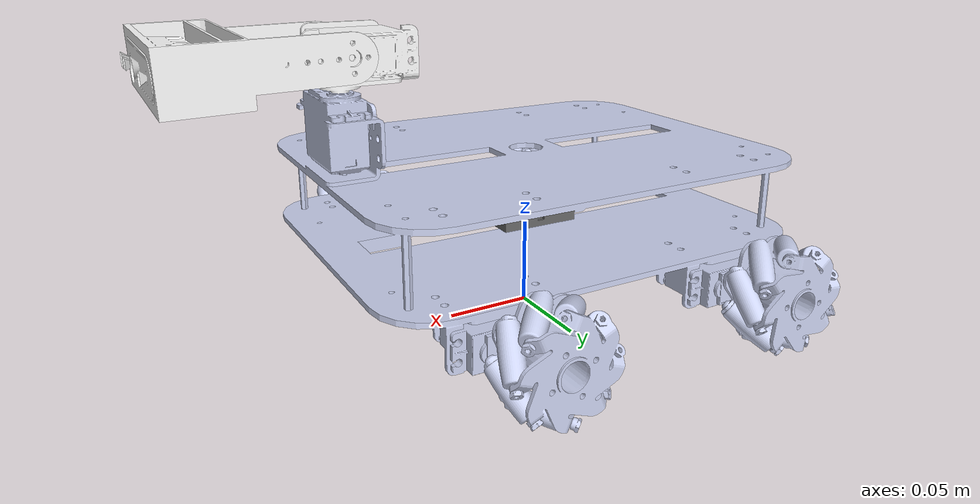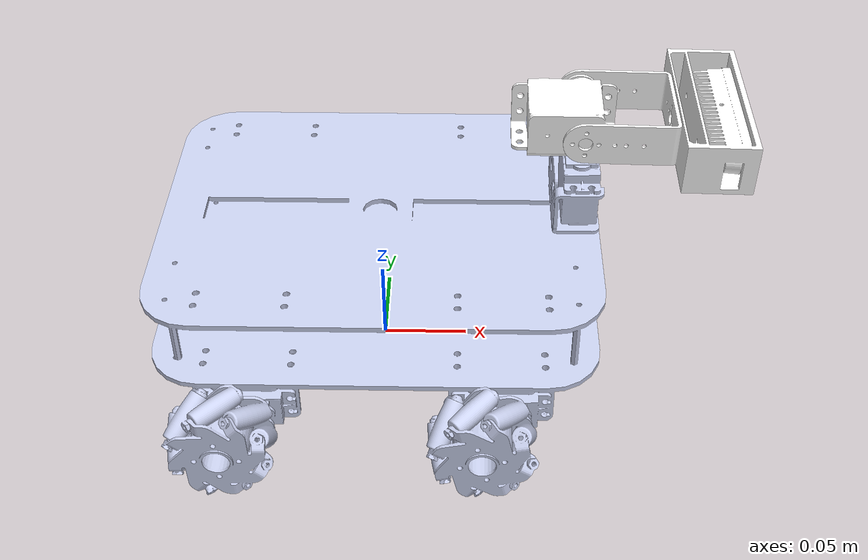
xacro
<?xml version="1.0" encoding="utf-8"?>

<robot name="ugv_bot" xmlns:xacro="http://ros.org/wiki/xacro">

<xacro:include filename="$(find ugv_description)/urdf/sensors/imu.urdf.xacro" />
<xacro:include filename="$(find ugv_description)/urdf/sensors/hp60c_camera.urdf.xacro" />

<!-- ======================= ROBOT CONSTANTS ======================= -->
<xacro:property name="PI" value="3.1415926535897931" />

<!-- Base plate is 250mm x 200mm -->
<!-- We'll assume the servos are mounted a bit inside the edges -->
<xacro:property name="wheel_offset_x" value="0.05975" />  <!-- Guess: 80mm from center -->
<xacro:property name="wheel_offset_y" value="0.108" />  <!-- Guess: 100mm from center -->
<xacro:property name="wheel_offset_z" value="-0.0185" /> <!-- Guess: 20mm below base_link origin. We will tune this. -->

  <material name="white">
    <color rgba="1 1 1 1" />
  </material>

  <!-- Define the visual components of the IMU assembly -->
  <link name="imu_link">
    <visual>
      <origin xyz="0 0 -0.0141" rpy="0 0 0" />
      <geometry>
        <mesh filename="package://ugv_description/meshes/IMU/visual/Breadboard.stl" scale="0.001 0.001 0.001"/>
      </geometry>
      <material name="grey"> <!-- Add a material to give it color -->
        <color rgba=".4 .4 .4 1"/>
      </material>
    </visual>
    <visual>
      <!-- Tune this XYZ to place the Arduino on top of the breadboard -->
      <origin xyz="0.02 -0.01 -0.0045" rpy="0 0 0" />
      <geometry>
        <mesh filename="package://ugv_description/meshes/IMU/visual/BLE33.stl" scale="0.001 0.001 0.001"/>
      </geometry>
      <material name="blue"> <!-- Add a material to give it color -->
        <color rgba="0 0 1 1"/>
      </material>
    </visual>
  </link>

  <!-- ======================= ROBOT BASE ======================= -->
  <!-- This is a virtual link at the center of the robot on the ground -->
  <link name="base_footprint"/>

  <joint name="base_footprint_joint" type="fixed">
    <parent link="base_footprint"/>
    <child link="base_link"/>
    <!-- Place the base_link origin 0.03m (3cm) above the ground. Tune this value. -->
    <origin xyz="0 0 0.053" rpy="0 0 0" />
  </joint>

  <link
    name="base_link">
    <inertial>
      <origin
        xyz="0.36874 -0.0047437 0.26806"
        rpy="0 0 0" />
      <mass
        value="6.694" />
      <inertia
        ixx="0.11521"
        ixy="0.0013455"
        ixz="0.0041749"
        iyy="0.14404"
        iyz="0.0027363"
        izz="0.14178" />
    </inertial>
    <visual>
      <origin
        xyz="0 0 0"
        rpy="0 0 0" />
      <geometry>
        <mesh
          filename="package://ugv_description/meshes/ugv_bot/visual/base_link.STL"/>
      </geometry>
      <material
        name="">
        <color
          rgba="0.79216 0.81961 0.93333 1" />
      </material>
    </visual>
    <collision>
      <origin
        xyz="0 0 0"
        rpy="0 0 0" />
      <geometry>
        <mesh
          filename="package://ugv_description/meshes/ugv_bot/visual/base_link.STL"/>
      </geometry>
    </collision>
  </link>
  <link
    name="front_right_wheel">
    <inertial>
      <origin
        xyz="0.002094 0.025627 -0.0058788"
        rpy="0 0 0" />
      <mass
        value="5.8353" />
      <inertia
        ixx="0.16436"
        ixy="5.1439E-06"
        ixz="-8.652E-05"
        iyy="0.28026"
        iyz="0.00010784"
        izz="0.16392" />
    </inertial>
    <visual>
      <origin
        xyz="0 0 0"
        rpy="0 0 0" />
      <geometry>
        <mesh
          filename="package://ugv_description/meshes/ugv_bot/visual/right_wheel_front.STL"/>
      </geometry>
      <material
        name="">
        <color
          rgba="0.79216 0.81961 0.93333 1" />
      </material>
    </visual>
    <collision>
      <origin
        xyz="0 0 0"
        rpy="0 0 0" />
      <geometry>
        <mesh
          filename="package://ugv_description/meshes/ugv_bot/visual/right_wheel_front.STL"/>
      </geometry>
    </collision>
  </link>
  <joint
    name="front_right_wheel_joint"
    type="continuous">
    <origin
      xyz="${wheel_offset_x} -${wheel_offset_y} ${wheel_offset_z}"
      rpy="0 0 0" />
    <parent
      link="base_link" />
    <child
      link="front_right_wheel" />
    <axis
      xyz="0 1 0" />
  </joint>
  <link
    name="front_left_wheel">
    <inertial>
      <origin
        xyz="0.0051142 -0.025627 -0.0035762"
        rpy="0 0 0" />
      <mass
        value="5.8353" />
      <inertia
        ixx="0.16391"
        ixy="0.00010536"
        ixz="3.7108E-05"
        iyy="0.28026"
        iyz="-2.3603E-05"
        izz="0.16437" />
    </inertial>
    <visual>
      <origin
        xyz="0 0 0"
        rpy="0 0 0" />
      <geometry>
        <mesh
          filename="package://ugv_description/meshes/ugv_bot/visual/Left_wheel_front.STL" />
      </geometry>
      <material
        name="">
        <color
          rgba="0.79216 0.81961 0.93333 1" />
      </material>
    </visual>
    <collision>
      <origin
        xyz="0 0 0"
        rpy="0 0 0" />
      <geometry>
        <mesh
          filename="package://ugv_description/meshes/ugv_bot/visual/Left_wheel_front.STL"/>
      </geometry>
    </collision>
  </link>
  <joint
    name="front_left_wheel_joint"
    type="continuous">
    <origin
      xyz="${wheel_offset_x} ${wheel_offset_y} ${wheel_offset_z}"
      rpy="0 0 0" />
    <parent
      link="base_link" />
    <child
      link="front_left_wheel" />
    <axis
      xyz="0 1 0" />
  </joint>
  <link
    name="back_left_wheel">
    <inertial>
      <origin
        xyz="4.9355E-05 -0.043014 -0.003259"
        rpy="0 0 0" />
      <mass
        value="7.1252" />
      <inertia
        ixx="0.18572"
        ixy="1.2265E-08"
        ixz="-6.0923E-08"
        iyy="0.319"
        iyz="0.0098429"
        izz="0.18645" />
    </inertial>
    <visual>
      <origin
        xyz="0 0 0"
        rpy="0 0 0" />
      <geometry>
        <mesh
          filename="package://ugv_description/meshes/ugv_bot/visual/left_wheel_bACK.STL" />
      </geometry>
      <material
        name="">
        <color
          rgba="0.79216 0.81961 0.93333 1" />
      </material>
    </visual>
    <collision>
      <origin
        xyz="0 0 0"
        rpy="0 0 0" />
      <geometry>
        <mesh
          filename="package://ugv_description/meshes/ugv_bot/visual/left_wheel_bACK.STL" />
      </geometry>
    </collision>
  </link>
  <joint
    name="back_left_wheel_joint"
    type="continuous">
    <origin
      xyz="-${wheel_offset_x + 0.0207} ${wheel_offset_y} ${wheel_offset_z}"
      rpy="0 0 0" />
    <parent
      link="base_link" />
    <child
      link="back_left_wheel" />
    <axis
      xyz="0 1 0" />
    <dynamics
      damping="0.1"
      friction="0.1" />
  </joint>
  <link
    name="back_right_wheel">
    <inertial>
      <origin
        xyz="-9.3176E-05 0.043018 0.0031994"
        rpy="0 0 0" />
      <mass
        value="7.1252" />
      <inertia
        ixx="0.18572"
        ixy="7.2787E-09"
        ixz="-5.8422E-08"
        iyy="0.319"
        iyz="0.0098429"
        izz="0.18645" />
    </inertial>
    <visual>
      <origin
        xyz="0 0 0"
        rpy="0 0 0" />
      <geometry>
        <mesh
          filename="package://ugv_description/meshes/ugv_bot/visual/right_wheel_back.STL" />
      </geometry>
      <material
        name="">
        <color
          rgba="0.79216 0.81961 0.93333 1" />
      </material>
    </visual>
    <collision>
      <origin
        xyz="0 0 0"
        rpy="0 0 0" />
      <geometry>
        <mesh
          filename="package://ugv_description/meshes/ugv_bot/visual/right_wheel_back.STL" />
      </geometry>
    </collision>
  </link>
  <joint
    name="back_right_wheel_joint"
    type="continuous">
    <origin
      xyz="-${wheel_offset_x + 0.0207} -${wheel_offset_y} ${wheel_offset_z}"
      rpy="0 0 0" />
    <parent
      link="base_link" />
    <child
      link="back_right_wheel" />
    <axis
      xyz="0 1 0" />
    <dynamics
      damping="0.1"
      friction="0.1" />
  </joint>

    <!-- ======================= PAN MECHANISM ======================= -->
  <link name="pan_link">
    <visual>
      <origin xyz="0 0 0" rpy="0 0 -${PI/6.59}" />
      <geometry>
        <mesh filename="package://ugv_description/meshes/ugv_bot/visual/pan.STL"/>
      </geometry>
      <material name="white"/>
    </visual>
    <collision>
      <geometry>
        <mesh filename="package://ugv_description/meshes/ugv_bot/visual/pan.STL"/>
      </geometry>
    </collision>
    <inertial>
      <origin xyz="-0.007155 -0.006896 0.013446" rpy="0 0 0" />
      <mass value="0.0369" />
      <inertia ixx="6.2e-06" ixy="-5.47e-07" ixz="-8.58e-08" iyy="6.83e-06" iyz="1.7e-07" izz="1.02e-05" />
    </inertial>
  </link>

  <joint name="pan_joint" type="revolute">
    <origin xyz="0.11287 0.0102 0.09128" rpy="0 0 0"/>
    <parent link="base_link"/>
    <child link="pan_link"/>
    <axis xyz="0 0 1" />
    <limit effort="10" velocity="1.0" lower="-1.57" upper="1.57" />
  </joint>

  <!-- ======================= TILT MECHANISM ======================= -->
  <link name="tilt_link">
    <visual>
      <origin xyz="0 0 0" rpy="-0.09 0.175 -${PI/6.59}" />
      <geometry>
        <mesh filename="package://ugv_description/meshes/ugv_bot/visual/tilt.STL" />
      </geometry>
      <material name="white"/>
    </visual>
    <collision>
      <geometry>
        <mesh filename="package://ugv_description/meshes/ugv_bot/visual/tilt.STL" />
      </geometry>
    </collision>
    <inertial>
      <origin xyz="0.0698 0.0044 0.0095" rpy="0 0 0" />
      <mass value="0.0519" />
      <inertia ixx="3.96e-05" ixy="1.42e-05" ixz="-4.3e-07" iyy="1.76e-05" iyz="-2.8e-07" izz="5.05e-05" />
    </inertial>
  </link>

  <joint name="tilt_joint" type="revolute">
    <origin xyz="0 0.022346 0.01497" rpy="0 0 0" />
    <parent link="pan_link"/>
    <child link="tilt_link"/>
    <axis xyz="0 1 0" />
    <limit effort="10" velocity="1.0" lower="-1.578" upper="0.2546" />
  </joint>

<!-- ======================= ATTACH SENSORS ======================= -->

  <!-- Call the Camera macro to attach the HP60C sensor frames to the tilt_link -->
  <xacro:hp60c_camera
    camera_name="hp60c"
    parent="tilt_link"
    xyz_offset="0.077 -0.030 0.00"
    rpy_offset="0 0 0"
    color_xyz_offset="0 -0.030 0"
    depth_frame_xyz_offset="0 0.030 0"
  />

  <joint name="imu_joint" type="fixed">
    <parent link="base_link"/>
    <child link="imu_link"/>
    <!-- Set X and Y to 0 to center it. Tune Z for the correct height. -->
    <origin xyz="0 0 0.0141" rpy="0 0 0" />
</joint>

</robot>

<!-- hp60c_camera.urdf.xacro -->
<robot xmlns:xacro="http://www.ros.org/wiki/xacro">

  <xacro:property name="M_PI" value="3.1415926535897931" />

  <xacro:macro name="hp60c_camera" params="
    prefix:=''
    camera_name:='hp60c'
    parent:='base_link'
    xyz_offset:='0 0 0'
    rpy_offset:='0 0 0'
    color_xyz_offset:='0 0 0'
    color_rpy_offset:='0 0 0'
    depth_frame_xyz_offset:='0 0 0'
    depth_frame_rpy_offset:='0 0 0'
    optical_xyz_offset:='0 0 0'
    optical_rpy_offset:='${-M_PI/2} 0 ${-M_PI/2}'
    mass:=0.072
    ixx:=0.0001 ixy:=0.0 ixz:=0.0 iyy:=0.0001 iyz:=0.0 izz:=0.0001
    ">

    <!-- This is the main link for the camera's body/center -->
    <link name="${camera_name}_link">
      <inertial>
        <mass value="${mass}" />
        <origin xyz="0 0 0" rpy="0 0 0"/>
        <inertia ixx="${ixx}" ixy="${ixy}" ixz="${ixz}"
                 iyy="${iyy}" iyz="${iyz}" izz="${izz}" />
      </inertial>
    </link>

    <!-- This joint attaches the camera's body to its parent (e.g., tilt_link) -->
    <joint name="${prefix}${camera_name}_joint" type="fixed">
      <parent link="${prefix}${parent}"/>
      <child link="${prefix}${camera_name}_link" />
      <origin xyz="${xyz_offset}" rpy="${rpy_offset}"/>
    </joint>

    <!-- ================== DEPTH SENSOR FRAMES ================== -->
    <joint name="${prefix}${camera_name}_depth_joint" type="fixed">
      <origin xyz="${depth_frame_xyz_offset}" rpy="${depth_frame_rpy_offset}"/>
      <parent link="${prefix}${camera_name}_link"/>
      <child link="${prefix}${camera_name}_depth_frame" />
    </joint>
    <link name="${prefix}${camera_name}_depth_frame"/>

    <joint name="${prefix}${camera_name}_depth_optical_joint" type="fixed">
      <origin xyz="${optical_xyz_offset}" rpy="${optical_rpy_offset}" />
      <parent link="${prefix}${camera_name}_depth_frame" />
      <child link="${prefix}${camera_name}_depth_optical_frame" />
    </joint>
    <link name="${prefix}${camera_name}_depth_optical_frame"/>

    <!-- ================== COLOR SENSOR FRAMES ================== -->
    <joint name="${prefix}${camera_name}_color_joint" type="fixed">
      <origin xyz="${color_xyz_offset}" rpy="${color_rpy_offset}" />
      <parent link="${prefix}${camera_name}_link" />
      <child link="${prefix}${camera_name}_color_frame" />
    </joint>
    <link name="${prefix}${camera_name}_color_frame"/>

    <joint name="${prefix}${camera_name}_color_optical_joint" type="fixed">
      <origin xyz="${optical_xyz_offset}" rpy="${optical_rpy_offset}" />
      <parent link="${prefix}${camera_name}_color_frame" />
      <child link="${prefix}${camera_name}_color_optical_frame" />
    </joint>
    <link name="${prefix}${camera_name}_color_optical_frame"/>

  </xacro:macro>
</robot>
